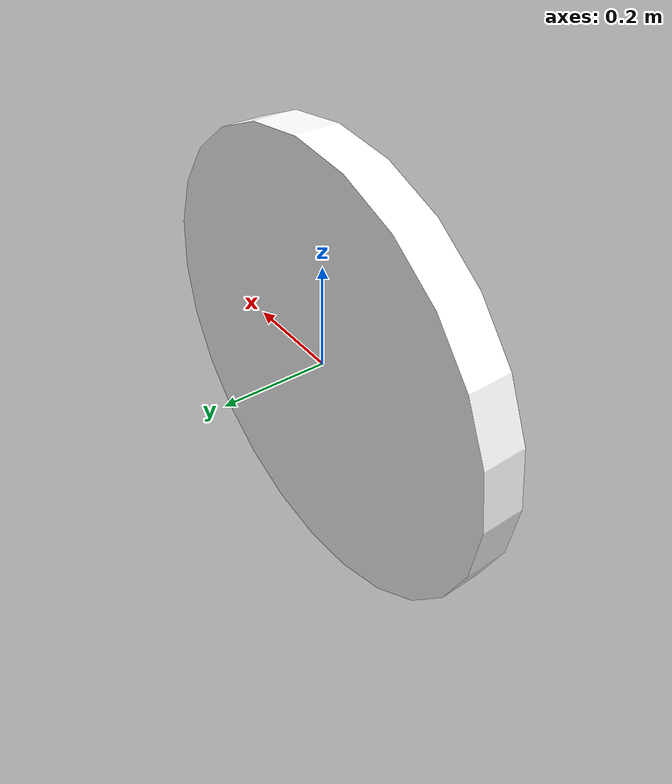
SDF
<?xml version="1.0"?>
<sdf version="1.4">
	<model name="pot">
		<static>true</static>

		<link name="pot">
			<collision name="collision">
				<geometry>
					<mesh>
						<uri>model://pot/meshes/pot.dae</uri>
					</mesh>
				</geometry>
			</collision>

			<visual name="visual">

				<cast_shadows>false</cast_shadows>
				<geometry>
					<mesh>
						<uri>model://pot/meshes/pot.dae</uri>
					</mesh>
				</geometry>

				<material>
					<ambient>1 1 1 1</ambient>
					<diffuse>1 1 1 1</diffuse>
					<specular>1 1 1 1</specular>
					<emissive>1 1 1 1</emissive>
				</material>

			</visual>
		</link>
	</model>
</sdf>
